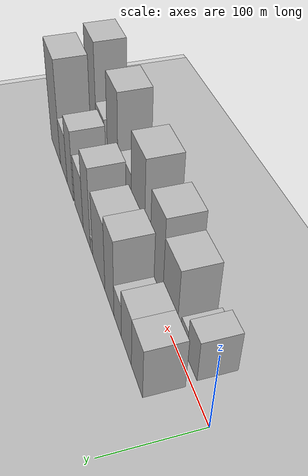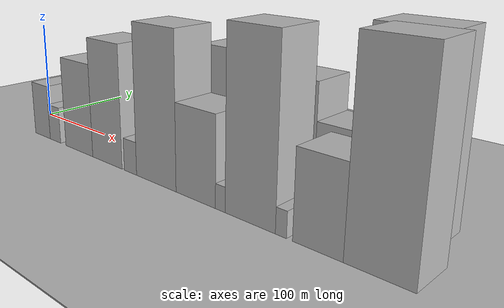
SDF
<?xml version="1.0" encoding="utf-8"?>

<sdf version="1.6">

   <world name="default">

      <gui fullscreen="0">

         <camera name="user_camera">

            <pose>-15 0 4.57585 0 0 0</pose>

            <view_controller>orbit</view_controller>

         </camera>

      </gui>

      <scene>

         <sky>

           <clouds>

             <speed>12</speed>

           </clouds>

         </sky>

         <ambient>0.4 0.4 0.4 1</ambient>

         <background>0.7 0.7 0.7 1</background>

         <shadows>1</shadows>

      </scene>

      <gravity>0 0 -9.8066</gravity>

      <magnetic_field>6e-06 2.3e-05 -4.2e-05</magnetic_field>

      <physics default="0" name="default_physics" type="ode">

         <ode>

            <solver>

               <type>quick</type>

               <iters>10</iters>

               <sor>1.0</sor>

               <use_dynamic_moi_rescaling>0</use_dynamic_moi_rescaling>

            </solver>

            <constraints>

               <cfm>0</cfm>

               <erp>0.2</erp>

               <contact_max_correcting_vel>100</contact_max_correcting_vel>

               <contact_surface_layer>0.001</contact_surface_layer>

            </constraints>

         </ode>

         <max_step_size>0.004</max_step_size>

         <real_time_factor>1</real_time_factor>

         <real_time_update_rate>250</real_time_update_rate>

      </physics>

      <light name="sun" type="directional">

         <cast_shadows>1</cast_shadows>

         <pose>0 0 10 0 0 0</pose>

         <diffuse>0.8 0.8 0.8 1</diffuse>

         <specular>0.2 0.2 0.2 1</specular>

         <attenuation>

            <range>1000</range>

            <constant>0.9</constant>

            <linear>0.01</linear>

            <quadratic>0.001</quadratic>

         </attenuation>

         <direction>-0.5 0.1 -0.9</direction>

      </light>

      <include>

         <name>ground_plane_1</name>

         <uri>model://HANNAS_ground_plane</uri>

         <pose>0 0 0  0 0 0</pose>

      </include>

      <include>

         <name>ground_plane_2</name>

         <uri>model://HANNAS_ground_plane</uri>

         <pose>100 0 0  0 0 0</pose>

      </include>

      <model name="building_1">

         <static>1</static>

         <pose frame="">60.3415 26.0000 0 0.000000 0.000000 1.570796</pose>

         <link name="link">

            <pose frame="">0 0 33.00 0 0 0</pose>

            <collision name="collision">

               <geometry>

                  <box>

                     <size>40.0000 34.6831 66.0000</size>

                  </box>

               </geometry>

               <max_contacts>10</max_contacts>

               <surface>

                  <contact>

                     <ode/>

                  </contact>

                  <bounce/>

                  <friction>

                     <torsional>

                        <ode/>

                     </torsional>

                     <ode/>

                  </friction>

               </surface>

            </collision>

            <visual name="visual">

               <cast_shadows>0</cast_shadows>

               <geometry>

                  <box>

                     <size>40.0000 34.6831 66.0000</size>

                  </box>

               </geometry>

               <material>

                  <script>

                     <uri>model://HANNAS_wall/materials/scripts</uri>

                     <uri>model://HANNAS_wall/materials/textures</uri>

                     <name>vrc/HANNAS_wall</name>

                  </script>

               </material>

            </visual>

            <self_collide>0</self_collide>

            <enable_wind>0</enable_wind>

            <kinematic>0</kinematic>

         </link>

      </model>

      <model name="building_2">

         <static>1</static>

         <pose frame="">94.6761 26.0000 0 0.000000 0.000000 1.570796</pose>

         <link name="link">

            <pose frame="">0 0 33.00 0 0 0</pose>

            <collision name="collision">

               <geometry>

                  <box>

                     <size>40.0000 33.9861 66.0000</size>

                  </box>

               </geometry>

               <max_contacts>10</max_contacts>

               <surface>

                  <contact>

                     <ode/>

                  </contact>

                  <bounce/>

                  <friction>

                     <torsional>

                        <ode/>

                     </torsional>

                     <ode/>

                  </friction>

               </surface>

            </collision>

            <visual name="visual">

               <cast_shadows>0</cast_shadows>

               <geometry>

                  <box>

                     <size>40.0000 33.9861 66.0000</size>

                  </box>

               </geometry>

               <material>

                  <script>

                     <uri>model://HANNAS_wall/materials/scripts</uri>

                     <uri>model://HANNAS_wall/materials/textures</uri>

                     <name>vrc/HANNAS_wall</name>

                  </script>

               </material>

            </visual>

            <self_collide>0</self_collide>

            <enable_wind>0</enable_wind>

            <kinematic>0</kinematic>

         </link>

      </model>

      <model name="building_3">

         <static>1</static>

         <pose frame="">124.8707 26.0000 0 0.000000 0.000000 1.570796</pose>

         <link name="link">

            <pose frame="">0 0 22.50 0 0 0</pose>

            <collision name="collision">

               <geometry>

                  <box>

                     <size>40.0000 26.4030 45.0000</size>

                  </box>

               </geometry>

               <max_contacts>10</max_contacts>

               <surface>

                  <contact>

                     <ode/>

                  </contact>

                  <bounce/>

                  <friction>

                     <torsional>

                        <ode/>

                     </torsional>

                     <ode/>

                  </friction>

               </surface>

            </collision>

            <visual name="visual">

               <cast_shadows>0</cast_shadows>

               <geometry>

                  <box>

                     <size>40.0000 26.4030 45.0000</size>

                  </box>

               </geometry>

               <material>

                  <script>

                     <uri>model://HANNAS_wall/materials/scripts</uri>

                     <uri>model://HANNAS_wall/materials/textures</uri>

                     <name>vrc/HANNAS_wall</name>

                  </script>

               </material>

            </visual>

            <self_collide>0</self_collide>

            <enable_wind>0</enable_wind>

            <kinematic>0</kinematic>

         </link>

      </model>

      <model name="building_4">

         <static>1</static>

         <pose frame="">155.4970 26.0000 0 0.000000 0.000000 1.570796</pose>

         <link name="link">

            <pose frame="">0 0 51.00 0 0 0</pose>

            <collision name="collision">

               <geometry>

                  <box>

                     <size>40.0000 34.8496 102.0000</size>

                  </box>

               </geometry>

               <max_contacts>10</max_contacts>

               <surface>

                  <contact>

                     <ode/>

                  </contact>

                  <bounce/>

                  <friction>

                     <torsional>

                        <ode/>

                     </torsional>

                     <ode/>

                  </friction>

               </surface>

            </collision>

            <visual name="visual">

               <cast_shadows>0</cast_shadows>

               <geometry>

                  <box>

                     <size>40.0000 34.8496 102.0000</size>

                  </box>

               </geometry>

               <material>

                  <script>

                     <uri>model://HANNAS_wall/materials/scripts</uri>

                     <uri>model://HANNAS_wall/materials/textures</uri>

                     <name>vrc/HANNAS_wall</name>

                  </script>

               </material>

            </visual>

            <self_collide>0</self_collide>

            <enable_wind>0</enable_wind>

            <kinematic>0</kinematic>

         </link>

      </model>

      <model name="building_5">

         <static>1</static>

         <pose frame="">198.7369 26.0000 0 0.000000 0.000000 1.570796</pose>

         <link name="link">

            <pose frame="">0 0 45.00 0 0 0</pose>

            <collision name="collision">

               <geometry>

                  <box>

                     <size>40.0000 51.6303 90.0000</size>

                  </box>

               </geometry>

               <max_contacts>10</max_contacts>

               <surface>

                  <contact>

                     <ode/>

                  </contact>

                  <bounce/>

                  <friction>

                     <torsional>

                        <ode/>

                     </torsional>

                     <ode/>

                  </friction>

               </surface>

            </collision>

            <visual name="visual">

               <cast_shadows>0</cast_shadows>

               <geometry>

                  <box>

                     <size>40.0000 51.6303 90.0000</size>

                  </box>

               </geometry>

               <material>

                  <script>

                     <uri>model://HANNAS_wall/materials/scripts</uri>

                     <uri>model://HANNAS_wall/materials/textures</uri>

                     <name>vrc/HANNAS_wall</name>

                  </script>

               </material>

            </visual>

            <self_collide>0</self_collide>

            <enable_wind>0</enable_wind>

            <kinematic>0</kinematic>

         </link>

      </model>

      <model name="building_6">

         <static>1</static>

         <pose frame="">229.6008 26.0000 0 0.000000 0.000000 1.570796</pose>

         <link name="link">

            <pose frame="">0 0 10.50 0 0 0</pose>

            <collision name="collision">

               <geometry>

                  <box>

                     <size>40.0000 10.0975 21.0000</size>

                  </box>

               </geometry>

               <max_contacts>10</max_contacts>

               <surface>

                  <contact>

                     <ode/>

                  </contact>

                  <bounce/>

                  <friction>

                     <torsional>

                        <ode/>

                     </torsional>

                     <ode/>

                  </friction>

               </surface>

            </collision>

            <visual name="visual">

               <cast_shadows>0</cast_shadows>

               <geometry>

                  <box>

                     <size>40.0000 10.0975 21.0000</size>

                  </box>

               </geometry>

               <material>

                  <script>

                     <uri>model://HANNAS_wall/materials/scripts</uri>

                     <uri>model://HANNAS_wall/materials/textures</uri>

                     <name>vrc/HANNAS_wall</name>

                  </script>

               </material>

            </visual>

            <self_collide>0</self_collide>

            <enable_wind>0</enable_wind>

            <kinematic>0</kinematic>

         </link>

      </model>

      <model name="building_7">

         <static>1</static>

         <pose frame="">251.5082 26.0000 0 0.000000 0.000000 1.570796</pose>

         <link name="link">

            <pose frame="">0 0 55.50 0 0 0</pose>

            <collision name="collision">

               <geometry>

                  <box>

                     <size>40.0000 33.7172 111.0000</size>

                  </box>

               </geometry>

               <max_contacts>10</max_contacts>

               <surface>

                  <contact>

                     <ode/>

                  </contact>

                  <bounce/>

                  <friction>

                     <torsional>

                        <ode/>

                     </torsional>

                     <ode/>

                  </friction>

               </surface>

            </collision>

            <visual name="visual">

               <cast_shadows>0</cast_shadows>

               <geometry>

                  <box>

                     <size>40.0000 33.7172 111.0000</size>

                  </box>

               </geometry>

               <material>

                  <script>

                     <uri>model://HANNAS_wall/materials/scripts</uri>

                     <uri>model://HANNAS_wall/materials/textures</uri>

                     <name>vrc/HANNAS_wall</name>

                  </script>

               </material>

            </visual>

            <self_collide>0</self_collide>

            <enable_wind>0</enable_wind>

            <kinematic>0</kinematic>

         </link>

      </model>

      <model name="building_8">

         <static>1</static>

         <pose frame="">289.7800 26.0000 0 0.000000 0.000000 1.570796</pose>

         <link name="link">

            <pose frame="">0 0 36.00 0 0 0</pose>

            <collision name="collision">

               <geometry>

                  <box>

                     <size>40.0000 42.8265 72.0000</size>

                  </box>

               </geometry>

               <max_contacts>10</max_contacts>

               <surface>

                  <contact>

                     <ode/>

                  </contact>

                  <bounce/>

                  <friction>

                     <torsional>

                        <ode/>

                     </torsional>

                     <ode/>

                  </friction>

               </surface>

            </collision>

            <visual name="visual">

               <cast_shadows>0</cast_shadows>

               <geometry>

                  <box>

                     <size>40.0000 42.8265 72.0000</size>

                  </box>

               </geometry>

               <material>

                  <script>

                     <uri>model://HANNAS_wall/materials/scripts</uri>

                     <uri>model://HANNAS_wall/materials/textures</uri>

                     <name>vrc/HANNAS_wall</name>

                  </script>

               </material>

            </visual>

            <self_collide>0</self_collide>

            <enable_wind>0</enable_wind>

            <kinematic>0</kinematic>

         </link>

      </model>

      <model name="building_9">

         <static>1</static>

         <pose frame="">334.2453 26.0000 0 0.000000 0.000000 1.570796</pose>

         <link name="link">

            <pose frame="">0 0 49.50 0 0 0</pose>

            <collision name="collision">

               <geometry>

                  <box>

                     <size>40.0000 34.1040 99.0000</size>

                  </box>

               </geometry>

               <max_contacts>10</max_contacts>

               <surface>

                  <contact>

                     <ode/>

                  </contact>

                  <bounce/>

                  <friction>

                     <torsional>

                        <ode/>

                     </torsional>

                     <ode/>

                  </friction>

               </surface>

            </collision>

            <visual name="visual">

               <cast_shadows>0</cast_shadows>

               <geometry>

                  <box>

                     <size>40.0000 34.1040 99.0000</size>

                  </box>

               </geometry>

               <material>

                  <script>

                     <uri>model://HANNAS_wall/materials/scripts</uri>

                     <uri>model://HANNAS_wall/materials/textures</uri>

                     <name>vrc/HANNAS_wall</name>

                  </script>

               </material>

            </visual>

            <self_collide>0</self_collide>

            <enable_wind>0</enable_wind>

            <kinematic>0</kinematic>

         </link>

      </model>

      <model name="building_10">

         <static>1</static>

         <pose frame="">370.8113 26.0000 0 0.000000 0.000000 1.570796</pose>

         <link name="link">

            <pose frame="">0 0 34.50 0 0 0</pose>

            <collision name="collision">

               <geometry>

                  <box>

                     <size>40.0000 39.0281 69.0000</size>

                  </box>

               </geometry>

               <max_contacts>10</max_contacts>

               <surface>

                  <contact>

                     <ode/>

                  </contact>

                  <bounce/>

                  <friction>

                     <torsional>

                        <ode/>

                     </torsional>

                     <ode/>

                  </friction>

               </surface>

            </collision>

            <visual name="visual">

               <cast_shadows>0</cast_shadows>

               <geometry>

                  <box>

                     <size>40.0000 39.0281 69.0000</size>

                  </box>

               </geometry>

               <material>

                  <script>

                     <uri>model://HANNAS_wall/materials/scripts</uri>

                     <uri>model://HANNAS_wall/materials/textures</uri>

                     <name>vrc/HANNAS_wall</name>

                  </script>

               </material>

            </visual>

            <self_collide>0</self_collide>

            <enable_wind>0</enable_wind>

            <kinematic>0</kinematic>

         </link>

      </model>

      <model name="building_11">

         <static>1</static>

         <pose frame="">418.6426 26.0000 0 0.000000 0.000000 1.570796</pose>

         <link name="link">

            <pose frame="">0 0 73.50 0 0 0</pose>

            <collision name="collision">

               <geometry>

                  <box>

                     <size>40.0000 56.6345 147.0000</size>

                  </box>

               </geometry>

               <max_contacts>10</max_contacts>

               <surface>

                  <contact>

                     <ode/>

                  </contact>

                  <bounce/>

                  <friction>

                     <torsional>

                        <ode/>

                     </torsional>

                     <ode/>

                  </friction>

               </surface>

            </collision>

            <visual name="visual">

               <cast_shadows>0</cast_shadows>

               <geometry>

                  <box>

                     <size>40.0000 56.6345 147.0000</size>

                  </box>

               </geometry>

               <material>

                  <script>

                     <uri>model://HANNAS_wall/materials/scripts</uri>

                     <uri>model://HANNAS_wall/materials/textures</uri>

                     <name>vrc/HANNAS_wall</name>

                  </script>

               </material>

            </visual>

            <self_collide>0</self_collide>

            <enable_wind>0</enable_wind>

            <kinematic>0</kinematic>

         </link>

      </model>

      <model name="building_12">

         <static>1</static>

         <pose frame="">59.5585 -26.0000 0 0.000000 0.000000 1.570796</pose>

         <link name="link">

            <pose frame="">0 0 27.00 0 0 0</pose>

            <collision name="collision">

               <geometry>

                  <box>

                     <size>40.0000 27.1169 54.0000</size>

                  </box>

               </geometry>

               <max_contacts>10</max_contacts>

               <surface>

                  <contact>

                     <ode/>

                  </contact>

                  <bounce/>

                  <friction>

                     <torsional>

                        <ode/>

                     </torsional>

                     <ode/>

                  </friction>

               </surface>

            </collision>

            <visual name="visual">

               <cast_shadows>0</cast_shadows>

               <geometry>

                  <box>

                     <size>40.0000 27.1169 54.0000</size>

                  </box>

               </geometry>

               <material>

                  <script>

                     <uri>model://HANNAS_wall/materials/scripts</uri>

                     <uri>model://HANNAS_wall/materials/textures</uri>

                     <name>vrc/HANNAS_wall</name>

                  </script>

               </material>

            </visual>

            <self_collide>0</self_collide>

            <enable_wind>0</enable_wind>

            <kinematic>0</kinematic>

         </link>

      </model>

      <model name="building_13">

         <static>1</static>

         <pose frame="">82.3201 -26.0000 0 0.000000 0.000000 1.570796</pose>

         <link name="link">

            <pose frame="">0 0 18.00 0 0 0</pose>

            <collision name="collision">

               <geometry>

                  <box>

                     <size>40.0000 18.4063 36.0000</size>

                  </box>

               </geometry>

               <max_contacts>10</max_contacts>

               <surface>

                  <contact>

                     <ode/>

                  </contact>

                  <bounce/>

                  <friction>

                     <torsional>

                        <ode/>

                     </torsional>

                     <ode/>

                  </friction>

               </surface>

            </collision>

            <visual name="visual">

               <cast_shadows>0</cast_shadows>

               <geometry>

                  <box>

                     <size>40.0000 18.4063 36.0000</size>

                  </box>

               </geometry>

               <material>

                  <script>

                     <uri>model://HANNAS_wall/materials/scripts</uri>

                     <uri>model://HANNAS_wall/materials/textures</uri>

                     <name>vrc/HANNAS_wall</name>

                  </script>

               </material>

            </visual>

            <self_collide>0</self_collide>

            <enable_wind>0</enable_wind>

            <kinematic>0</kinematic>

         </link>

      </model>

      <model name="building_14">

         <static>1</static>

         <pose frame="">122.3119 -26.0000 0 0.000000 0.000000 1.570796</pose>

         <link name="link">

            <pose frame="">0 0 43.50 0 0 0</pose>

            <collision name="collision">

               <geometry>

                  <box>

                     <size>40.0000 43.5773 87.0000</size>

                  </box>

               </geometry>

               <max_contacts>10</max_contacts>

               <surface>

                  <contact>

                     <ode/>

                  </contact>

                  <bounce/>

                  <friction>

                     <torsional>

                        <ode/>

                     </torsional>

                     <ode/>

                  </friction>

               </surface>

            </collision>

            <visual name="visual">

               <cast_shadows>0</cast_shadows>

               <geometry>

                  <box>

                     <size>40.0000 43.5773 87.0000</size>

                  </box>

               </geometry>

               <material>

                  <script>

                     <uri>model://HANNAS_wall/materials/scripts</uri>

                     <uri>model://HANNAS_wall/materials/textures</uri>

                     <name>vrc/HANNAS_wall</name>

                  </script>

               </material>

            </visual>

            <self_collide>0</self_collide>

            <enable_wind>0</enable_wind>

            <kinematic>0</kinematic>

         </link>

      </model>

      <model name="building_15">

         <static>1</static>

         <pose frame="">165.6549 -26.0000 0 0.000000 0.000000 1.570796</pose>

         <link name="link">

            <pose frame="">0 0 55.50 0 0 0</pose>

            <collision name="collision">

               <geometry>

                  <box>

                     <size>40.0000 43.1087 111.0000</size>

                  </box>

               </geometry>

               <max_contacts>10</max_contacts>

               <surface>

                  <contact>

                     <ode/>

                  </contact>

                  <bounce/>

                  <friction>

                     <torsional>

                        <ode/>

                     </torsional>

                     <ode/>

                  </friction>

               </surface>

            </collision>

            <visual name="visual">

               <cast_shadows>0</cast_shadows>

               <geometry>

                  <box>

                     <size>40.0000 43.1087 111.0000</size>

                  </box>

               </geometry>

               <material>

                  <script>

                     <uri>model://HANNAS_wall/materials/scripts</uri>

                     <uri>model://HANNAS_wall/materials/textures</uri>

                     <name>vrc/HANNAS_wall</name>

                  </script>

               </material>

            </visual>

            <self_collide>0</self_collide>

            <enable_wind>0</enable_wind>

            <kinematic>0</kinematic>

         </link>

      </model>

      <model name="building_16">

         <static>1</static>

         <pose frame="">198.5516 -26.0000 0 0.000000 0.000000 1.570796</pose>

         <link name="link">

            <pose frame="">0 0 15.00 0 0 0</pose>

            <collision name="collision">

               <geometry>

                  <box>

                     <size>40.0000 16.6847 30.0000</size>

                  </box>

               </geometry>

               <max_contacts>10</max_contacts>

               <surface>

                  <contact>

                     <ode/>

                  </contact>

                  <bounce/>

                  <friction>

                     <torsional>

                        <ode/>

                     </torsional>

                     <ode/>

                  </friction>

               </surface>

            </collision>

            <visual name="visual">

               <cast_shadows>0</cast_shadows>

               <geometry>

                  <box>

                     <size>40.0000 16.6847 30.0000</size>

                  </box>

               </geometry>

               <material>

                  <script>

                     <uri>model://HANNAS_wall/materials/scripts</uri>

                     <uri>model://HANNAS_wall/materials/textures</uri>

                     <name>vrc/HANNAS_wall</name>

                  </script>

               </material>

            </visual>

            <self_collide>0</self_collide>

            <enable_wind>0</enable_wind>

            <kinematic>0</kinematic>

         </link>

      </model>

      <model name="building_17">

         <static>1</static>

         <pose frame="">231.5147 -26.0000 0 0.000000 0.000000 1.570796</pose>

         <link name="link">

            <pose frame="">0 0 66.00 0 0 0</pose>

            <collision name="collision">

               <geometry>

                  <box>

                     <size>40.0000 49.2415 132.0000</size>

                  </box>

               </geometry>

               <max_contacts>10</max_contacts>

               <surface>

                  <contact>

                     <ode/>

                  </contact>

                  <bounce/>

                  <friction>

                     <torsional>

                        <ode/>

                     </torsional>

                     <ode/>

                  </friction>

               </surface>

            </collision>

            <visual name="visual">

               <cast_shadows>0</cast_shadows>

               <geometry>

                  <box>

                     <size>40.0000 49.2415 132.0000</size>

                  </box>

               </geometry>

               <material>

                  <script>

                     <uri>model://HANNAS_wall/materials/scripts</uri>

                     <uri>model://HANNAS_wall/materials/textures</uri>

                     <name>vrc/HANNAS_wall</name>

                  </script>

               </material>

            </visual>

            <self_collide>0</self_collide>

            <enable_wind>0</enable_wind>

            <kinematic>0</kinematic>

         </link>

      </model>

      <model name="building_18">

         <static>1</static>

         <pose frame="">277.8617 -26.0000 0 0.000000 0.000000 1.570796</pose>

         <link name="link">

            <pose frame="">0 0 37.50 0 0 0</pose>

            <collision name="collision">

               <geometry>

                  <box>

                     <size>40.0000 43.4525 75.0000</size>

                  </box>

               </geometry>

               <max_contacts>10</max_contacts>

               <surface>

                  <contact>

                     <ode/>

                  </contact>

                  <bounce/>

                  <friction>

                     <torsional>

                        <ode/>

                     </torsional>

                     <ode/>

                  </friction>

               </surface>

            </collision>

            <visual name="visual">

               <cast_shadows>0</cast_shadows>

               <geometry>

                  <box>

                     <size>40.0000 43.4525 75.0000</size>

                  </box>

               </geometry>

               <material>

                  <script>

                     <uri>model://HANNAS_wall/materials/scripts</uri>

                     <uri>model://HANNAS_wall/materials/textures</uri>

                     <name>vrc/HANNAS_wall</name>

                  </script>

               </material>

            </visual>

            <self_collide>0</self_collide>

            <enable_wind>0</enable_wind>

            <kinematic>0</kinematic>

         </link>

      </model>

      <model name="building_19">

         <static>1</static>

         <pose frame="">304.5380 -26.0000 0 0.000000 0.000000 1.570796</pose>

         <link name="link">

            <pose frame="">0 0 10.50 0 0 0</pose>

            <collision name="collision">

               <geometry>

                  <box>

                     <size>40.0000 9.9000 21.0000</size>

                  </box>

               </geometry>

               <max_contacts>10</max_contacts>

               <surface>

                  <contact>

                     <ode/>

                  </contact>

                  <bounce/>

                  <friction>

                     <torsional>

                        <ode/>

                     </torsional>

                     <ode/>

                  </friction>

               </surface>

            </collision>

            <visual name="visual">

               <cast_shadows>0</cast_shadows>

               <geometry>

                  <box>

                     <size>40.0000 9.9000 21.0000</size>

                  </box>

               </geometry>

               <material>

                  <script>

                     <uri>model://HANNAS_wall/materials/scripts</uri>

                     <uri>model://HANNAS_wall/materials/textures</uri>

                     <name>vrc/HANNAS_wall</name>

                  </script>

               </material>

            </visual>

            <self_collide>0</self_collide>

            <enable_wind>0</enable_wind>

            <kinematic>0</kinematic>

         </link>

      </model>

      <model name="building_20">

         <static>1</static>

         <pose frame="">333.2238 -26.0000 0 0.000000 0.000000 1.570796</pose>

         <link name="link">

            <pose frame="">0 0 72.00 0 0 0</pose>

            <collision name="collision">

               <geometry>

                  <box>

                     <size>40.0000 47.4717 144.0000</size>

                  </box>

               </geometry>

               <max_contacts>10</max_contacts>

               <surface>

                  <contact>

                     <ode/>

                  </contact>

                  <bounce/>

                  <friction>

                     <torsional>

                        <ode/>

                     </torsional>

                     <ode/>

                  </friction>

               </surface>

            </collision>

            <visual name="visual">

               <cast_shadows>0</cast_shadows>

               <geometry>

                  <box>

                     <size>40.0000 47.4717 144.0000</size>

                  </box>

               </geometry>

               <material>

                  <script>

                     <uri>model://HANNAS_wall/materials/scripts</uri>

                     <uri>model://HANNAS_wall/materials/textures</uri>

                     <name>vrc/HANNAS_wall</name>

                  </script>

               </material>

            </visual>

            <self_collide>0</self_collide>

            <enable_wind>0</enable_wind>

            <kinematic>0</kinematic>

         </link>

      </model>

      <model name="building_21">

         <static>1</static>

         <pose frame="">361.7968 -26.0000 0 0.000000 0.000000 1.570796</pose>

         <link name="link">

            <pose frame="">0 0 10.50 0 0 0</pose>

            <collision name="collision">

               <geometry>

                  <box>

                     <size>40.0000 9.6743 21.0000</size>

                  </box>

               </geometry>

               <max_contacts>10</max_contacts>

               <surface>

                  <contact>

                     <ode/>

                  </contact>

                  <bounce/>

                  <friction>

                     <torsional>

                        <ode/>

                     </torsional>

                     <ode/>

                  </friction>

               </surface>

            </collision>

            <visual name="visual">

               <cast_shadows>0</cast_shadows>

               <geometry>

                  <box>

                     <size>40.0000 9.6743 21.0000</size>

                  </box>

               </geometry>

               <material>

                  <script>

                     <uri>model://HANNAS_wall/materials/scripts</uri>

                     <uri>model://HANNAS_wall/materials/textures</uri>

                     <name>vrc/HANNAS_wall</name>

                  </script>

               </material>

            </visual>

            <self_collide>0</self_collide>

            <enable_wind>0</enable_wind>

            <kinematic>0</kinematic>

         </link>

      </model>

      <model name="building_22">

         <static>1</static>

         <pose frame="">391.6307 -26.0000 0 0.000000 0.000000 1.570796</pose>

         <link name="link">

            <pose frame="">0 0 34.50 0 0 0</pose>

            <collision name="collision">

               <geometry>

                  <box>

                     <size>40.0000 39.9936 69.0000</size>

                  </box>

               </geometry>

               <max_contacts>10</max_contacts>

               <surface>

                  <contact>

                     <ode/>

                  </contact>

                  <bounce/>

                  <friction>

                     <torsional>

                        <ode/>

                     </torsional>

                     <ode/>

                  </friction>

               </surface>

            </collision>

            <visual name="visual">

               <cast_shadows>0</cast_shadows>

               <geometry>

                  <box>

                     <size>40.0000 39.9936 69.0000</size>

                  </box>

               </geometry>

               <material>

                  <script>

                     <uri>model://HANNAS_wall/materials/scripts</uri>

                     <uri>model://HANNAS_wall/materials/textures</uri>

                     <name>vrc/HANNAS_wall</name>

                  </script>

               </material>

            </visual>

            <self_collide>0</self_collide>

            <enable_wind>0</enable_wind>

            <kinematic>0</kinematic>

         </link>

      </model>

      <model name="building_23">

         <static>1</static>

         <pose frame="">436.6211 -26.0000 0 0.000000 0.000000 1.570796</pose>

         <link name="link">

            <pose frame="">0 0 75.00 0 0 0</pose>

            <collision name="collision">

               <geometry>

                  <box>

                     <size>40.0000 49.9873 150.0000</size>

                  </box>

               </geometry>

               <max_contacts>10</max_contacts>

               <surface>

                  <contact>

                     <ode/>

                  </contact>

                  <bounce/>

                  <friction>

                     <torsional>

                        <ode/>

                     </torsional>

                     <ode/>

                  </friction>

               </surface>

            </collision>

            <visual name="visual">

               <cast_shadows>0</cast_shadows>

               <geometry>

                  <box>

                     <size>40.0000 49.9873 150.0000</size>

                  </box>

               </geometry>

               <material>

                  <script>

                     <uri>model://HANNAS_wall/materials/scripts</uri>

                     <uri>model://HANNAS_wall/materials/textures</uri>

                     <name>vrc/HANNAS_wall</name>

                  </script>

               </material>

            </visual>

            <self_collide>0</self_collide>

            <enable_wind>0</enable_wind>

            <kinematic>0</kinematic>

         </link>

      </model>

   </world>

</sdf>

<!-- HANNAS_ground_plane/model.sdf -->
<sdf version="1.4">
<model name="HANNAS_ground_plane">
  <static>true</static>
    <link name="link">
      <collision name="collision">
        <geometry>
          <plane>
            <normal>0 0 1</normal>
            <size>1000 1000</size>
          </plane>
        </geometry>
        <surface>
          <friction>
            <ode>
              <mu>100</mu>
              <mu2>50</mu2>
            </ode>
          </friction>
        </surface>
      </collision>
      <visual name="visual">
        <cast_shadows>false</cast_shadows>
        <geometry>
          <plane>
            <normal>0 0 1</normal>
            <size>1000 1000</size>
          </plane>
        </geometry>
        <material>
          <script>
            <uri>model://HANNAS_ground_plane/materials/scripts/HANNAS_ground_plane.material</uri>
	    <uri>model://HANNAS_ground_plane/materials/textures</uri>
            <name>HANNASGroundPlane/Image</name>
          </script>
        </material>
      </visual>
    </link>
  </model>
</sdf>
